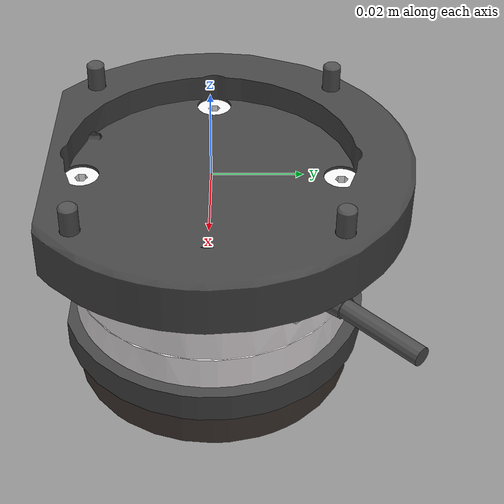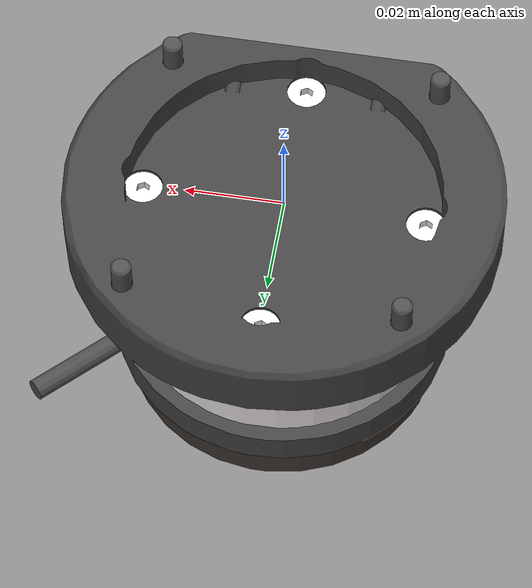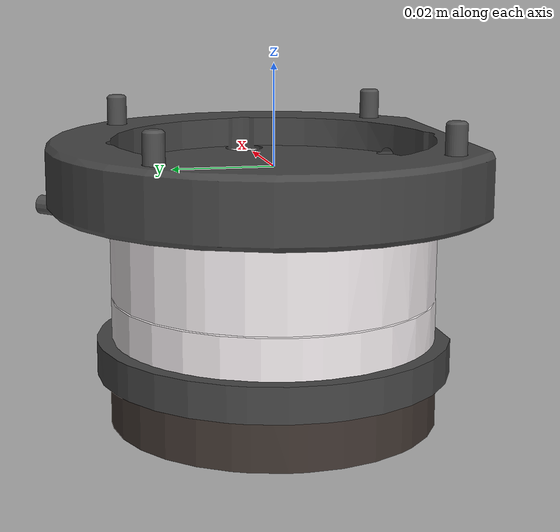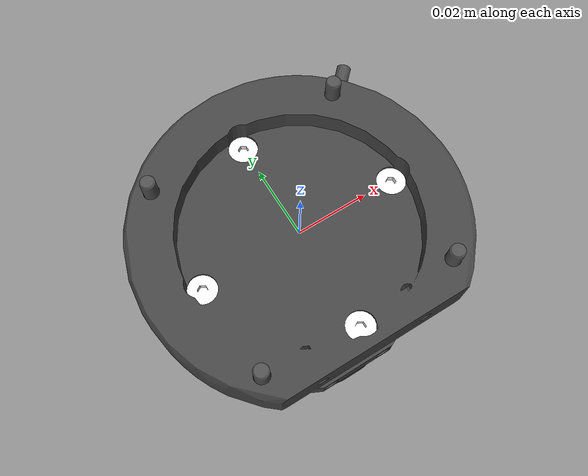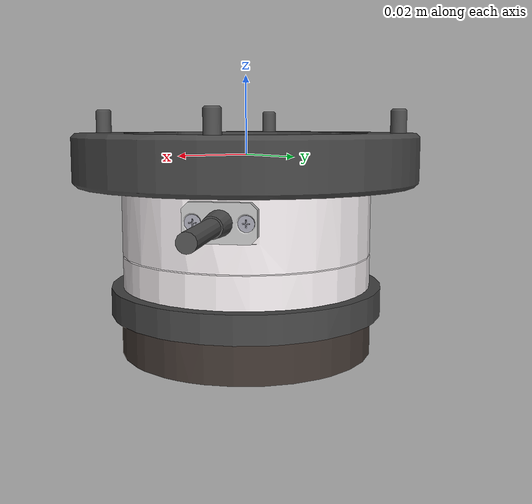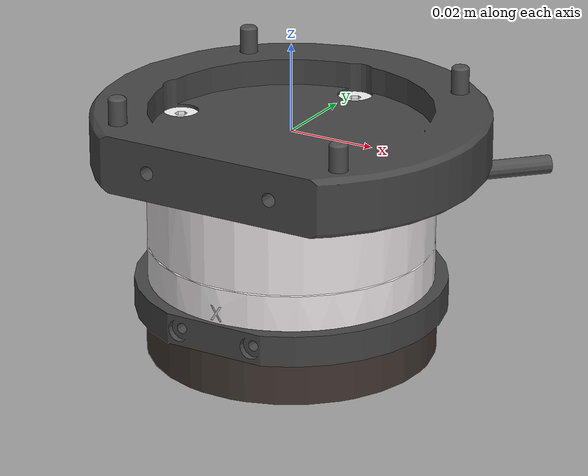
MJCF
<mujoco model="FT_SENSOR_R">
  <default>
    <default class="visual">
      <geom group="2" type="mesh" contype="0" conaffinity="0"/>
    </default>
    <default class="collision">
      <geom group="3" type="mesh"/>
    </default>
  </default>
  <asset>
    <material name="163,163,175.004" specular="0.0" shininess="0.225" rgba="0.639216 0.639216 0.686275 1.000000"/>
    <material name="191,191,191.013" specular="0.0" shininess="0.225" rgba="0.749020 0.749020 0.749020 1.000000"/>
    <material name="192,192,192.004" specular="0.0" shininess="0.225" rgba="0.752941 0.752941 0.752941 1.000000"/>
    <material name="216,214,214.004" specular="0.0" shininess="0.225" rgba="0.847059 0.839216 0.839216 1.000000"/>
    <material name="242,236,238.004" specular="0.0" shininess="0.225" rgba="0.949020 0.925490 0.933333 1.000000"/>
    <material name="244,244,244.005" specular="0.0" shininess="0.225" rgba="0.956863 0.956863 0.956863 1.000000"/>
    <material name="254,254,255.016" specular="0.0" shininess="0.225" rgba="0.996078 0.996078 1.000000 1.000000"/>
    <material name="65,55,50.004" specular="0.0" shininess="0.225" rgba="0.254902 0.215686 0.196078 1.000000"/>
    <material name="69,69,69.011" specular="0.0" shininess="0.225" rgba="0.270588 0.270588 0.270588 1.000000"/>
    <material name="79,79,79.004" specular="0.0" shininess="0.225" rgba="0.309804 0.309804 0.309804 1.000000"/>
    <material name="80,80,80.004" specular="0.0" shininess="0.225" rgba="0.313725 0.313725 0.313725 1.000000"/>
    <mesh file="FT_SENSOR_R_0.obj"/>
    <mesh file="FT_SENSOR_R_1.obj"/>
    <mesh file="FT_SENSOR_R_2.obj"/>
    <mesh file="FT_SENSOR_R_3.obj"/>
    <mesh file="FT_SENSOR_R_4.obj"/>
    <mesh file="FT_SENSOR_R_5.obj"/>
    <mesh file="FT_SENSOR_R_6.obj"/>
    <mesh file="FT_SENSOR_R_7.obj"/>
    <mesh file="FT_SENSOR_R_8.obj"/>
    <mesh file="FT_SENSOR_R_9.obj"/>
    <mesh file="FT_SENSOR_R_10.obj"/>
  </asset>
  <worldbody>
    <body name="FT_SENSOR_R">
      <geom mesh="FT_SENSOR_R_0" material="254,254,255.016" class="visual"/>
      <geom mesh="FT_SENSOR_R_1" material="65,55,50.004" class="visual"/>
      <geom mesh="FT_SENSOR_R_2" material="80,80,80.004" class="visual"/>
      <geom mesh="FT_SENSOR_R_3" material="244,244,244.005" class="visual"/>
      <geom mesh="FT_SENSOR_R_4" material="191,191,191.013" class="visual"/>
      <geom mesh="FT_SENSOR_R_5" material="216,214,214.004" class="visual"/>
      <geom mesh="FT_SENSOR_R_6" material="79,79,79.004" class="visual"/>
      <geom mesh="FT_SENSOR_R_7" material="192,192,192.004" class="visual"/>
      <geom mesh="FT_SENSOR_R_8" material="163,163,175.004" class="visual"/>
      <geom mesh="FT_SENSOR_R_9" material="242,236,238.004" class="visual"/>
      <geom mesh="FT_SENSOR_R_10" material="69,69,69.011" class="visual"/>
      <geom mesh="FT_SENSOR_R_0" class="collision"/>
      <geom mesh="FT_SENSOR_R_1" class="collision"/>
      <geom mesh="FT_SENSOR_R_2" class="collision"/>
      <geom mesh="FT_SENSOR_R_3" class="collision"/>
      <geom mesh="FT_SENSOR_R_4" class="collision"/>
      <geom mesh="FT_SENSOR_R_5" class="collision"/>
      <geom mesh="FT_SENSOR_R_6" class="collision"/>
      <geom mesh="FT_SENSOR_R_7" class="collision"/>
      <geom mesh="FT_SENSOR_R_8" class="collision"/>
      <geom mesh="FT_SENSOR_R_9" class="collision"/>
      <geom mesh="FT_SENSOR_R_10" class="collision"/>
    </body>
  </worldbody>
</mujoco>
